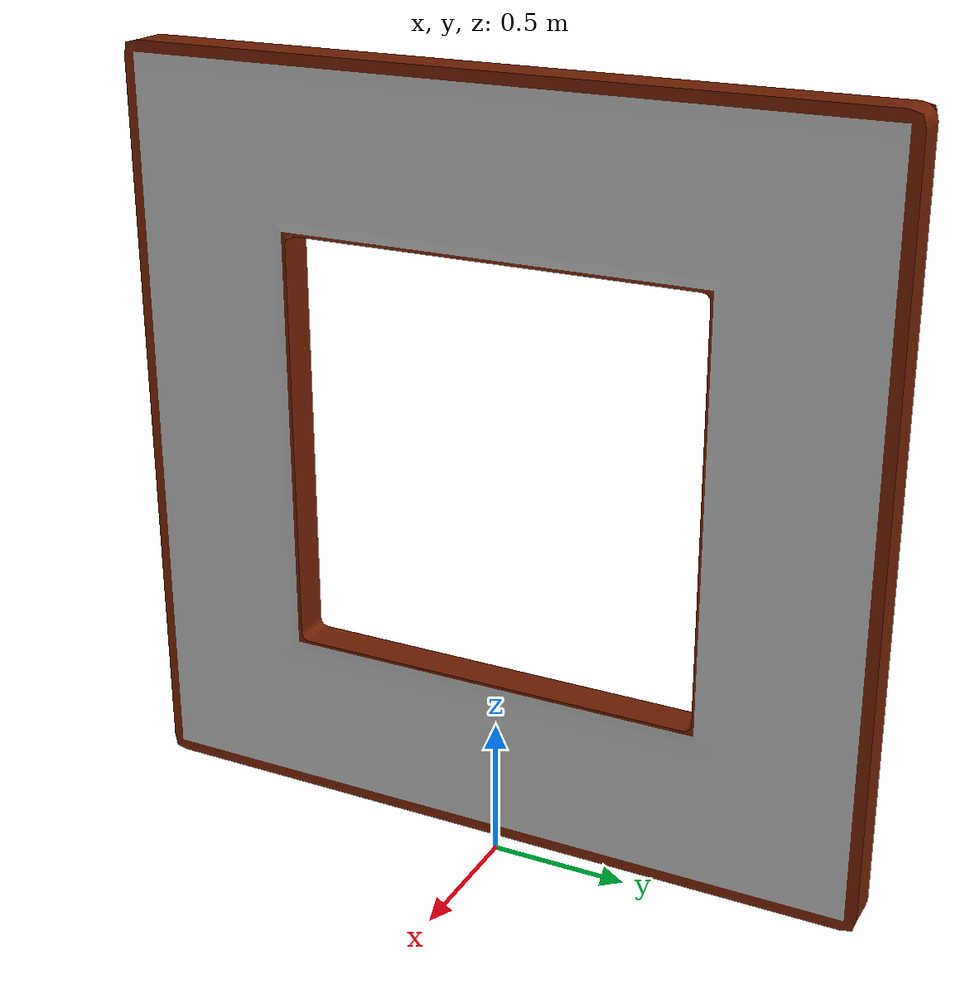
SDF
<sdf version="1.9">
  <model name="orange_single_gate">
    <static>true</static>

    <link name="link">
      <visual name="visual">
        <geometry>
          <mesh>
            <uri>model://orange_single_gate/meshes/orange_single_gate.dae</uri>
          </mesh>
        </geometry>
      </visual>

      <collision name="collision">
        <geometry>
          <mesh>
            <uri>model://orange_single_gate/meshes/orange_single_gate.dae</uri>
          </mesh>
        </geometry>
      </collision>
    </link>
  </model>
</sdf>
